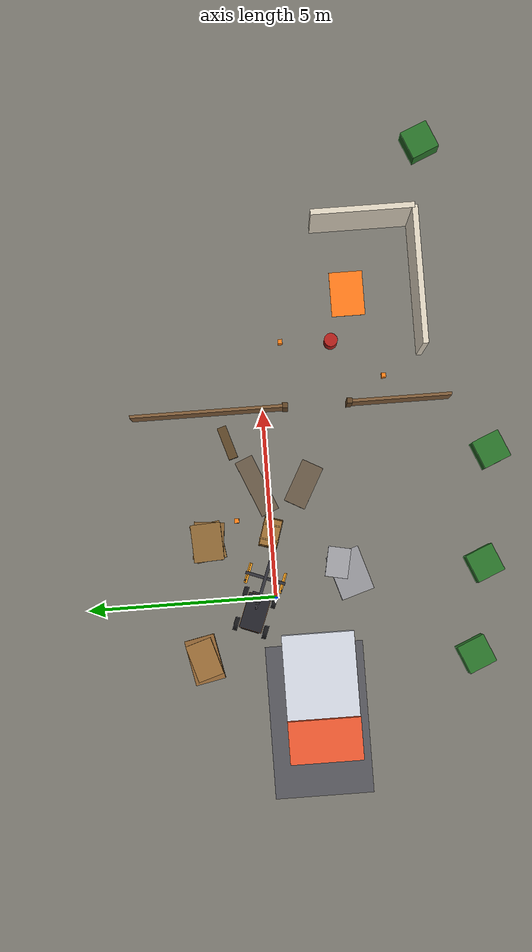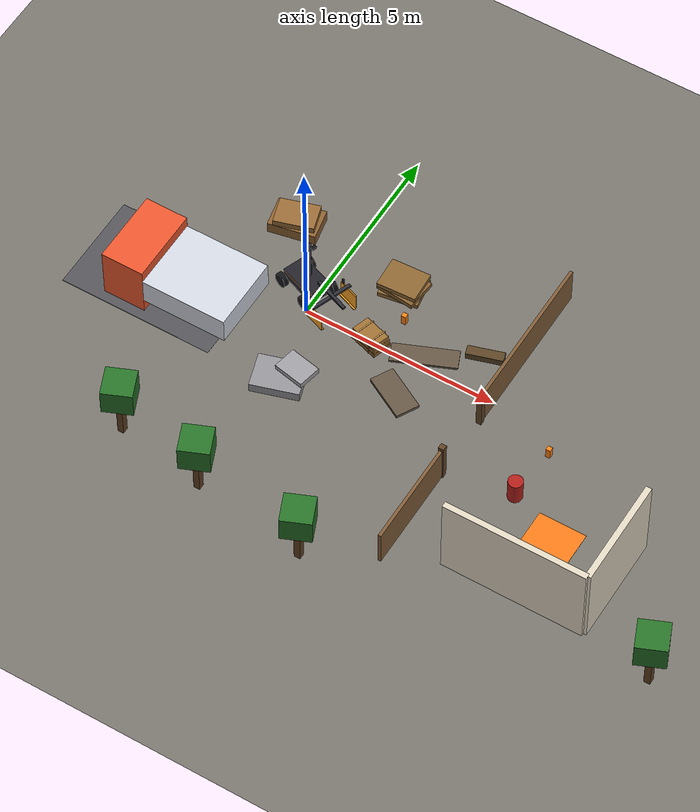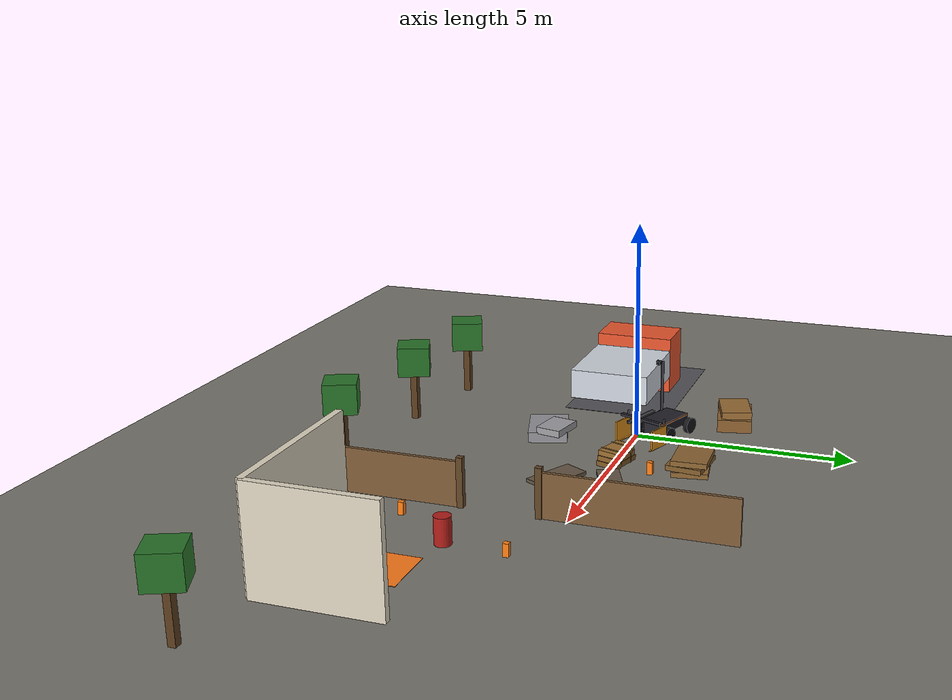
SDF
<?xml version="1.0" ?>
<sdf version="1.10">
  <world name="jobsite">

    <physics name="default" type="dartsim">
      <max_step_size>0.002</max_step_size>
      <real_time_factor>1.0</real_time_factor>
    </physics>

    <plugin filename="gz-sim-physics-system" name="gz::sim::systems::Physics"/>
    <plugin filename="gz-sim-user-commands-system" name="gz::sim::systems::UserCommands"/>
    <plugin filename="gz-sim-scene-broadcaster-system" name="gz::sim::systems::SceneBroadcaster"/>
    <plugin filename="gz-sim-sensors-system" name="gz::sim::systems::Sensors">
      <render_engine>ogre2</render_engine>
    </plugin>

    <scene>
      <ambient>0.7 0.7 0.7 1</ambient>
      <background>0.55 0.75 0.95 1</background>
    </scene>

    <light type="directional" name="sun">
      <cast_shadows>true</cast_shadows>
      <pose>0 0 12 0 0 0</pose>
      <diffuse>0.9 0.87 0.8 1</diffuse>
      <direction>-0.4 0.3 -0.8</direction>
    </light>

    <!-- ground -->
    <model name="ground">
      <static>true</static>
      <link name="link">
        <collision name="c">
          <geometry><plane><normal>0 0 1</normal><size>60 60</size></plane></geometry>
          <surface><friction><ode><mu>0.9</mu><mu2>0.9</mu2></ode></friction></surface>
        </collision>
        <visual name="v">
          <geometry><plane><normal>0 0 1</normal><size>60 60</size></plane></geometry>
          <material><ambient>0.42 0.41 0.38 1</ambient><diffuse>0.47 0.46 0.43 1</diffuse></material>
        </visual>
      </link>
    </model>

    <!-- rough patches: shallow ramps and bumps on the route -->
    <model name="bump1">
      <static>true</static>
      <pose>3.0 0.3 0.02 0 0 0.4</pose>
      <link name="l"><collision name="c"><geometry><box><size>1.6 0.5 0.06</size></box></geometry></collision>
      <visual name="v"><geometry><box><size>1.6 0.5 0.06</size></box></geometry>
      <material><ambient>0.35 0.3 0.24 1</ambient><diffuse>0.4 0.34 0.27 1</diffuse></material></visual></link>
    </model>
    <model name="bump2">
      <static>true</static>
      <pose>2.95 -0.95 0.025 0 0 -0.5</pose>
      <link name="l"><collision name="c"><geometry><box><size>1.2 0.6 0.08</size></box></geometry></collision>
      <visual name="v"><geometry><box><size>1.2 0.6 0.08</size></box></geometry>
      <material><ambient>0.35 0.3 0.24 1</ambient><diffuse>0.4 0.34 0.27 1</diffuse></material></visual></link>
    </model>

    <!-- obstacle on the route -->
    <model name="obstacle_scrap">
      <static>true</static>
      <pose>4.2 1.0 0.09 0 0 0.3</pose>
      <link name="l"><collision name="c"><geometry><box><size>0.9 0.25 0.18</size></box></geometry></collision>
      <visual name="v"><geometry><box><size>0.9 0.25 0.18</size></box></geometry>
      <material><ambient>0.30 0.22 0.12 1</ambient><diffuse>0.36 0.27 0.15 1</diffuse></material></visual></link>
    </model>

    <!-- material pile (where stacks come from) -->
    <model name="pile">
      <static>true</static>
      <pose>-1.5 2.0 0 0 0 0.2</pose>
      <link name="l">
        <collision name="c1"><pose>0 0 0.15 0 0 0</pose><geometry><box><size>1.2 0.8 0.3</size></box></geometry></collision>
        <visual name="v1"><pose>0 0 0.15 0 0 0</pose><geometry><box><size>1.2 0.8 0.3</size></box></geometry>
          <material><ambient>0.45 0.32 0.16 1</ambient><diffuse>0.55 0.38 0.19 1</diffuse></material></visual>
        <visual name="v2"><pose>0 0 0.38 0 0 0.1</pose><geometry><box><size>1.0 0.7 0.16</size></box></geometry>
          <material><ambient>0.5 0.36 0.18 1</ambient><diffuse>0.6 0.42 0.21 1</diffuse></material></visual>
      </link>
    </model>

    <!-- drop zone marker -->
    <model name="drop_zone">
      <static>true</static>
      <pose>8.0 -2.5 0.006 0 0 0</pose>
      <link name="l">
        <visual name="v"><geometry><box><size>1.2 0.9 0.012</size></box></geometry>
          <material><ambient>1.0 0.48 0.10 1</ambient><diffuse>1.0 0.48 0.10 1</diffuse></material></visual>
      </link>
    </model>

    <!-- ===================== T-01 robot ===================== -->
    <model name="t01">
      <pose>-0.36 0.585 0.32 0 0 -0.363</pose>

      <link name="chassis">
        <inertial>
          <pose>-0.12 0 -0.05 0 0 0</pose>
          <mass>140</mass>
          <inertia><ixx>6.0</ixx><iyy>12.5</iyy><izz>15.0</izz><ixy>0</ixy><ixz>0</ixz><iyz>0</iyz></inertia>
        </inertial>
        <collision name="c">
          <geometry><box><size>0.95 0.60 0.24</size></box></geometry>
        </collision>
        <visual name="v">
          <geometry><box><size>0.95 0.60 0.24</size></box></geometry>
          <material><ambient>0.10 0.10 0.12 1</ambient><diffuse>0.13 0.13 0.16 1</diffuse></material>
        </visual>
        <visual name="ballast">
          <pose>-0.42 0 -0.02 0 0 0</pose>
          <geometry><box><size>0.16 0.5 0.20</size></box></geometry>
          <material><ambient>0.08 0.08 0.09 1</ambient><diffuse>0.11 0.11 0.13 1</diffuse></material>
        </visual>
        <sensor name="lidar" type="gpu_lidar">
          <pose>0.48 0 -0.20 0 0 0</pose>
          <topic>scan</topic>
          <update_rate>10</update_rate>
          <lidar>
            <scan><horizontal><samples>480</samples><resolution>1</resolution>
              <min_angle>-3.1416</min_angle><max_angle>3.1416</max_angle></horizontal></scan>
            <range><min>0.15</min><max>14.0</max><resolution>0.01</resolution></range>
          </lidar>
        </sensor>
        <visual name="stripe">
          <pose>0 0 0.09 0 0 0</pose>
          <geometry><box><size>0.96 0.61 0.03</size></box></geometry>
          <material><ambient>1.0 0.48 0.10 1</ambient><diffuse>1.0 0.48 0.10 1</diffuse></material>
        </visual>
      </link>

      <!-- mast + camera -->
      <link name="camera_link">
        <pose>0.30 0 1.50 0 0.25 0</pose>
        <inertial><mass>0.5</mass><inertia><ixx>0.01</ixx><iyy>0.01</iyy><izz>0.01</izz></inertia></inertial>
        <visual name="v"><geometry><box><size>0.08 0.10 0.08</size></box></geometry>
          <material><ambient>0.05 0.05 0.06 1</ambient><diffuse>0.08 0.08 0.1 1</diffuse></material></visual>
        <visual name="pole"><pose>0 0 -0.62 0 -0.25 0</pose><geometry><box><size>0.05 0.05 1.18</size></box></geometry>
          <material><ambient>0.10 0.10 0.12 1</ambient><diffuse>0.13 0.13 0.16 1</diffuse></material></visual>
        <sensor name="front_cam" type="camera">
          <topic>front_cam</topic>
          <update_rate>15</update_rate>
          <camera>
            <horizontal_fov>1.5</horizontal_fov>
            <image><width>640</width><height>360</height></image>
            <clip><near>0.05</near><far>60</far></clip>
          </camera>
        </sensor>
      </link>
      <joint name="camera_joint" type="fixed">
        <parent>chassis</parent><child>camera_link</child>
      </joint>

      <!-- front mast carriage (lift) -->
      <link name="lift_link">
        <pose>0.50 0 -0.05 0 0 0</pose>
        <inertial>
          <mass>8</mass>
          <inertia><ixx>0.2</ixx><iyy>0.25</iyy><izz>0.3</izz></inertia>
        </inertial>
        <collision name="c"><geometry><box><size>0.06 0.44 0.30</size></box></geometry></collision>
        <visual name="v"><geometry><box><size>0.06 0.44 0.30</size></box></geometry>
          <material><ambient>0.12 0.12 0.14 1</ambient><diffuse>0.15 0.15 0.18 1</diffuse></material></visual>
        <visual name="boom"><pose>0.45 0 0.42 0 0 0</pose>
          <geometry><box><size>0.95 0.08 0.06</size></box></geometry>
          <material><ambient>0.14 0.14 0.16 1</ambient><diffuse>0.18 0.18 0.21 1</diffuse></material></visual>
        <visual name="crossbar"><pose>0.45 0 0.36 0 0 0</pose>
          <geometry><box><size>0.08 1.08 0.06</size></box></geometry>
          <material><ambient>0.14 0.14 0.16 1</ambient><diffuse>0.18 0.18 0.21 1</diffuse></material></visual>
      </link>
      <joint name="lift_joint" type="prismatic">
        <parent>chassis</parent><child>lift_link</child>
        <axis>
          <xyz>0 0 1</xyz>
          <limit><lower>-0.05</lower><upper>0.45</upper><effort>8000</effort><velocity>0.4</velocity></limit>
          <dynamics><damping>500</damping></dynamics>
        </axis>
      </joint>

      <!-- wheels (skid-steer approximation of tracks) -->
      <link name="wheel_fl"><pose>0.42 0.40 -0.14 -1.5707 0 0</pose>
        <inertial><mass>6</mass><inertia><ixx>0.06</ixx><iyy>0.06</iyy><izz>0.1</izz></inertia></inertial>
        <collision name="c"><geometry><cylinder><radius>0.18</radius><length>0.12</length></cylinder></geometry>
          <surface><friction><ode><mu>1.1</mu><mu2>0.9</mu2></ode></friction></surface></collision>
        <visual name="v"><geometry><cylinder><radius>0.18</radius><length>0.12</length></cylinder></geometry>
          <material><ambient>0.06 0.06 0.07 1</ambient><diffuse>0.09 0.09 0.1 1</diffuse></material></visual>
      </link>
      <link name="wheel_fr"><pose>0.42 -0.40 -0.14 -1.5707 0 0</pose>
        <inertial><mass>6</mass><inertia><ixx>0.06</ixx><iyy>0.06</iyy><izz>0.1</izz></inertia></inertial>
        <collision name="c"><geometry><cylinder><radius>0.18</radius><length>0.12</length></cylinder></geometry>
          <surface><friction><ode><mu>1.1</mu><mu2>0.9</mu2></ode></friction></surface></collision>
        <visual name="v"><geometry><cylinder><radius>0.18</radius><length>0.12</length></cylinder></geometry>
          <material><ambient>0.06 0.06 0.07 1</ambient><diffuse>0.09 0.09 0.1 1</diffuse></material></visual>
      </link>
      <link name="wheel_rl"><pose>-0.42 0.40 -0.14 -1.5707 0 0</pose>
        <inertial><mass>6</mass><inertia><ixx>0.06</ixx><iyy>0.06</iyy><izz>0.1</izz></inertia></inertial>
        <collision name="c"><geometry><cylinder><radius>0.18</radius><length>0.12</length></cylinder></geometry>
          <surface><friction><ode><mu>1.1</mu><mu2>0.9</mu2></ode></friction></surface></collision>
        <visual name="v"><geometry><cylinder><radius>0.18</radius><length>0.12</length></cylinder></geometry>
          <material><ambient>0.06 0.06 0.07 1</ambient><diffuse>0.09 0.09 0.1 1</diffuse></material></visual>
      </link>
      <link name="wheel_rr"><pose>-0.42 -0.40 -0.14 -1.5707 0 0</pose>
        <inertial><mass>6</mass><inertia><ixx>0.06</ixx><iyy>0.06</iyy><izz>0.1</izz></inertia></inertial>
        <collision name="c"><geometry><cylinder><radius>0.18</radius><length>0.12</length></cylinder></geometry>
          <surface><friction><ode><mu>1.1</mu><mu2>0.9</mu2></ode></friction></surface></collision>
        <visual name="v"><geometry><cylinder><radius>0.18</radius><length>0.12</length></cylinder></geometry>
          <material><ambient>0.06 0.06 0.07 1</ambient><diffuse>0.09 0.09 0.1 1</diffuse></material></visual>
      </link>

      <joint name="wheel_fl_joint" type="revolute">
        <parent>chassis</parent><child>wheel_fl</child>
        <axis><xyz>0 0 1</xyz><limit><effort>1500</effort></limit></axis>
      </joint>
      <joint name="wheel_fr_joint" type="revolute">
        <parent>chassis</parent><child>wheel_fr</child>
        <axis><xyz>0 0 1</xyz><limit><effort>1500</effort></limit></axis>
      </joint>
      <joint name="wheel_rl_joint" type="revolute">
        <parent>chassis</parent><child>wheel_rl</child>
        <axis><xyz>0 0 1</xyz><limit><effort>1500</effort></limit></axis>
      </joint>
      <joint name="wheel_rr_joint" type="revolute">
        <parent>chassis</parent><child>wheel_rr</child>
        <axis><xyz>0 0 1</xyz><limit><effort>1500</effort></limit></axis>
      </joint>

      <!-- drive: skid steer via diff drive on both wheel pairs -->
      <plugin filename="gz-sim-diff-drive-system" name="gz::sim::systems::DiffDrive">
        <left_joint>wheel_fl_joint</left_joint>
        <left_joint>wheel_rl_joint</left_joint>
        <right_joint>wheel_fr_joint</right_joint>
        <right_joint>wheel_rr_joint</right_joint>
        <wheel_separation>0.80</wheel_separation>
        <wheel_radius>0.18</wheel_radius>
        <topic>/cmd_vel</topic>
        <odom_topic>/odom</odom_topic>
        <max_linear_acceleration>0.4</max_linear_acceleration>
      </plugin>

      <!-- lift control -->
      <plugin filename="gz-sim-joint-position-controller-system" name="gz::sim::systems::JointPositionController">
        <joint_name>lift_joint</joint_name>
        <topic>/lift_cmd</topic>
        <p_gain>12000</p_gain>
        <d_gain>900</d_gain>
        <i_gain>10</i_gain>
        <initial_position>0.10</initial_position>
      </plugin>

      <!-- clamp paddles: the robot HUGS the load (bear-hug cradle, not a forklift) -->
      <link name="paddle_l">
        <pose>0.95 0.50 -0.03 0 0 0</pose>
        <inertial><mass>3</mass><inertia><ixx>0.07</ixx><iyy>0.08</iyy><izz>0.03</izz></inertia></inertial>
        <collision name="c"><geometry><box><size>0.55 0.03 0.46</size></box></geometry>
          <surface><friction><ode><mu>1.2</mu><mu2>1.2</mu2></ode></friction></surface></collision>
        <visual name="v"><geometry><box><size>0.55 0.03 0.46</size></box></geometry>
          <material><ambient>0.85 0.55 0.10 1</ambient><diffuse>0.95 0.62 0.12 1</diffuse></material></visual>
        <visual name="hanger"><pose>-0.20 0 0.31 0 0 0</pose><geometry><box><size>0.05 0.03 0.16</size></box></geometry>
          <material><ambient>0.14 0.14 0.16 1</ambient><diffuse>0.18 0.18 0.21 1</diffuse></material></visual>
        <collision name="toe"><pose>0 -0.037 -0.241 0 0 0</pose><geometry><box><size>0.55 0.045 0.022</size></box></geometry>
          <surface><friction><ode><mu>1.0</mu><mu2>1.0</mu2></ode></friction></surface></collision>
        <visual name="toe_v"><pose>0 -0.037 -0.241 0 0 0</pose><geometry><box><size>0.55 0.045 0.022</size></box></geometry>
          <material><ambient>0.85 0.55 0.10 1</ambient><diffuse>0.95 0.62 0.12 1</diffuse></material></visual>
      </link>
      <joint name="clamp_l_joint" type="prismatic">
        <parent>lift_link</parent><child>paddle_l</child>
        <axis><xyz>0 -1 0</xyz>
          <limit><lower>0</lower><upper>0.45</upper><effort>2600</effort><velocity>0.25</velocity></limit>
          <dynamics><damping>400</damping></dynamics>
        </axis>
      </joint>
      <link name="paddle_r">
        <pose>0.95 -0.50 -0.03 0 0 0</pose>
        <inertial><mass>3</mass><inertia><ixx>0.07</ixx><iyy>0.08</iyy><izz>0.03</izz></inertia></inertial>
        <collision name="c"><geometry><box><size>0.55 0.03 0.46</size></box></geometry>
          <surface><friction><ode><mu>1.2</mu><mu2>1.2</mu2></ode></friction></surface></collision>
        <visual name="v"><geometry><box><size>0.55 0.03 0.46</size></box></geometry>
          <material><ambient>0.85 0.55 0.10 1</ambient><diffuse>0.95 0.62 0.12 1</diffuse></material></visual>
        <visual name="hanger"><pose>-0.20 0 0.31 0 0 0</pose><geometry><box><size>0.05 0.03 0.16</size></box></geometry>
          <material><ambient>0.14 0.14 0.16 1</ambient><diffuse>0.18 0.18 0.21 1</diffuse></material></visual>
        <collision name="toe"><pose>0 0.037 -0.241 0 0 0</pose><geometry><box><size>0.55 0.045 0.022</size></box></geometry>
          <surface><friction><ode><mu>1.0</mu><mu2>1.0</mu2></ode></friction></surface></collision>
        <visual name="toe_v"><pose>0 0.037 -0.241 0 0 0</pose><geometry><box><size>0.55 0.045 0.022</size></box></geometry>
          <material><ambient>0.85 0.55 0.10 1</ambient><diffuse>0.95 0.62 0.12 1</diffuse></material></visual>
      </link>
      <joint name="clamp_r_joint" type="prismatic">
        <parent>lift_link</parent><child>paddle_r</child>
        <axis><xyz>0 1 0</xyz>
          <limit><lower>0</lower><upper>0.45</upper><effort>2600</effort><velocity>0.25</velocity></limit>
          <dynamics><damping>400</damping></dynamics>
        </axis>
      </joint>

      <!-- clamp controllers (force-limited squeeze via joint effort cap) -->
      <plugin filename="gz-sim-joint-position-controller-system" name="gz::sim::systems::JointPositionController">
        <joint_name>clamp_l_joint</joint_name>
        <topic>/clamp_l_cmd</topic>
        <p_gain>14000</p_gain>
        <d_gain>500</d_gain>
        <initial_position>0.0</initial_position>
      </plugin>
      <plugin filename="gz-sim-joint-position-controller-system" name="gz::sim::systems::JointPositionController">
        <joint_name>clamp_r_joint</joint_name>
        <topic>/clamp_r_cmd</topic>
        <p_gain>14000</p_gain>
        <d_gain>500</d_gain>
        <initial_position>0.0</initial_position>
      </plugin>

      <plugin filename="gz-sim-joint-state-publisher-system" name="gz::sim::systems::JointStatePublisher">
        <joint_name>lift_joint</joint_name>
        <joint_name>clamp_l_joint</joint_name>
        <joint_name>clamp_r_joint</joint_name>
      </plugin>

      <!-- true model pose (OdometryPublisher integrates velocity and drifts; this does not) -->
      <plugin filename="gz-sim-pose-publisher-system" name="gz::sim::systems::PosePublisher">
        <publish_model_pose>true</publish_model_pose>
        <publish_link_pose>false</publish_link_pose>
        <publish_collision_pose>false</publish_collision_pose>
        <publish_visual_pose>false</publish_visual_pose>
        <publish_nested_model_pose>false</publish_nested_model_pose>
        <static_publisher>false</static_publisher>
        <use_pose_vector_msg>true</use_pose_vector_msg>
        <update_frequency>30</update_frequency>
      </plugin>

    </model>

    <!-- cedar stack payload flat on the ground (no pallet, no dunnage): the robot
         clamps it from the sides, which is the whole point of the bear-hug design -->
    <model name="cedar_stack">
      <pose>1.72 0.02 0.185 0 0 -0.30</pose>
      <plugin filename="gz-sim-pose-publisher-system" name="gz::sim::systems::PosePublisher">
        <publish_model_pose>true</publish_model_pose>
        <publish_link_pose>false</publish_link_pose>
        <publish_collision_pose>false</publish_collision_pose>
        <publish_visual_pose>false</publish_visual_pose>
        <publish_nested_model_pose>false</publish_nested_model_pose>
        <static_publisher>false</static_publisher>
        <use_pose_vector_msg>true</use_pose_vector_msg>
        <update_frequency>10</update_frequency>
      </plugin>
      <link name="stack_link">
        <inertial>
          <mass>60</mass>
          <inertia><ixx>1.2</ixx><iyy>2.6</iyy><izz>3.2</izz></inertia>
        </inertial>
        <collision name="c"><geometry><box><size>0.80 0.50 0.36</size></box></geometry>
          <surface><friction><ode><mu>0.95</mu><mu2>0.95</mu2></ode></friction></surface></collision>
        <visual name="v1"><pose>0 0 -0.12 0 0 0</pose><geometry><box><size>0.80 0.50 0.12</size></box></geometry>
          <material><ambient>0.42 0.29 0.13 1</ambient><diffuse>0.52 0.36 0.16 1</diffuse></material></visual>
        <visual name="v2"><pose>0 0 0.0 0 0 0</pose><geometry><box><size>0.76 0.48 0.12</size></box></geometry>
          <material><ambient>0.48 0.33 0.15 1</ambient><diffuse>0.58 0.40 0.18 1</diffuse></material></visual>
        <visual name="v3"><pose>0 0 0.12 0 0 0</pose><geometry><box><size>0.72 0.46 0.12</size></box></geometry>
          <material><ambient>0.52 0.36 0.17 1</ambient><diffuse>0.62 0.44 0.20 1</diffuse></material></visual>
        <visual name="strap1"><pose>0.2 0 0 0 0 0</pose><geometry><box><size>0.03 0.52 0.38</size></box></geometry>
          <material><ambient>0.75 0.55 0.3 1</ambient><diffuse>0.8 0.6 0.33 1</diffuse></material></visual>
        <visual name="strap2"><pose>-0.2 0 0 0 0 0</pose><geometry><box><size>0.03 0.52 0.38</size></box></geometry>
          <material><ambient>0.75 0.55 0.3 1</ambient><diffuse>0.8 0.6 0.33 1</diffuse></material></visual>
      </link>
    </model>

    <!-- ============ scenery pack (demo v2) ============ -->
    <model name="driveway">
      <static>true</static>
      <pose>-3.3 -0.9 0.004 0 0 0</pose>
      <link name="l"><collision name="c"><geometry><box><size>4.0 2.6 0.008</size></box></geometry></collision>
      <visual name="v"><geometry><box><size>4.0 2.6 0.008</size></box></geometry>
      <material><ambient>0.28 0.28 0.30 1</ambient><diffuse>0.33 0.33 0.35 1</diffuse></material></visual></link>
    </model>
    <model name="truck_bed">
      <static>true</static>
      <pose>-2.1 -1.0 0.75 0 0 0</pose>
      <link name="l"><collision name="c"><geometry><box><size>2.2 1.9 0.7</size></box></geometry></collision>
      <visual name="v"><geometry><box><size>2.2 1.9 0.7</size></box></geometry>
      <material><ambient>0.72 0.74 0.78 1</ambient><diffuse>0.82 0.84 0.88 1</diffuse></material></visual></link>
    </model>
    <model name="truck_cab">
      <static>true</static>
      <pose>-3.75 -1.0 0.7 0 0 0</pose>
      <link name="l"><collision name="c"><geometry><box><size>1.1 1.9 1.4</size></box></geometry></collision>
      <visual name="v"><geometry><box><size>1.1 1.9 1.4</size></box></geometry>
      <material><ambient>0.82 0.30 0.16 1</ambient><diffuse>0.92 0.34 0.18 1</diffuse></material></visual></link>
    </model>
    <model name="fence_a">
      <static>true</static>
      <pose>5.0 1.45 0.5 0 0 0</pose>
      <link name="l"><collision name="c"><geometry><box><size>0.08 4.1 1.0</size></box></geometry></collision>
      <visual name="v"><geometry><box><size>0.08 4.1 1.0</size></box></geometry>
      <material><ambient>0.42 0.30 0.18 1</ambient><diffuse>0.5 0.36 0.22 1</diffuse></material></visual></link>
    </model>
    <model name="fence_b">
      <static>true</static>
      <pose>5.0 -3.65 0.5 0 0 0</pose>
      <link name="l"><collision name="c"><geometry><box><size>0.08 2.7 1.0</size></box></geometry></collision>
      <visual name="v"><geometry><box><size>0.08 2.7 1.0</size></box></geometry>
      <material><ambient>0.42 0.30 0.18 1</ambient><diffuse>0.5 0.36 0.22 1</diffuse></material></visual></link>
    </model>
    <model name="gate_post_a">
      <static>true</static>
      <pose>5.0 -0.60 0.55 0 0 0</pose>
      <link name="l"><collision name="c"><geometry><box><size>0.14 0.14 1.1</size></box></geometry></collision>
      <visual name="v"><geometry><box><size>0.14 0.14 1.1</size></box></geometry>
      <material><ambient>0.32 0.22 0.12 1</ambient><diffuse>0.38 0.27 0.15 1</diffuse></material></visual></link>
    </model>
    <model name="gate_post_b">
      <static>true</static>
      <pose>5.0 -2.30 0.55 0 0 0</pose>
      <link name="l"><collision name="c"><geometry><box><size>0.14 0.14 1.1</size></box></geometry></collision>
      <visual name="v"><geometry><box><size>0.14 0.14 1.1</size></box></geometry>
      <material><ambient>0.32 0.22 0.12 1</ambient><diffuse>0.38 0.27 0.15 1</diffuse></material></visual></link>
    </model>
    <model name="house_wall_a">
      <static>true</static>
      <pose>8.0 -4.3 1.15 0 0 0</pose>
      <link name="l"><collision name="c"><geometry><box><size>3.6 0.15 2.3</size></box></geometry></collision>
      <visual name="v"><geometry><box><size>3.6 0.15 2.3</size></box></geometry>
      <material><ambient>0.82 0.78 0.70 1</ambient><diffuse>0.88 0.84 0.76 1</diffuse></material></visual></link>
    </model>
    <model name="house_wall_b">
      <static>true</static>
      <pose>9.8 -2.95 1.15 0 0 0</pose>
      <link name="l"><collision name="c"><geometry><box><size>0.15 2.7 2.3</size></box></geometry></collision>
      <visual name="v"><geometry><box><size>0.15 2.7 2.3</size></box></geometry>
      <material><ambient>0.82 0.78 0.70 1</ambient><diffuse>0.88 0.84 0.76 1</diffuse></material></visual></link>
    </model>
    <model name="pallet1">
      <static>true</static>
      <pose>1.6 1.7 0.06 0 0 0.15</pose>
      <link name="l"><collision name="c"><geometry><box><size>1.0 0.8 0.12</size></box></geometry></collision>
      <visual name="v"><geometry><box><size>1.0 0.8 0.12</size></box></geometry>
      <material><ambient>0.45 0.33 0.17 1</ambient><diffuse>0.55 0.40 0.20 1</diffuse></material></visual></link>
    </model>
    <model name="pallet2">
      <static>true</static>
      <pose>1.62 1.68 0.18 0 0 -0.1</pose>
      <link name="l"><collision name="c"><geometry><box><size>1.0 0.8 0.12</size></box></geometry></collision>
      <visual name="v"><geometry><box><size>1.0 0.8 0.12</size></box></geometry>
      <material><ambient>0.42 0.30 0.15 1</ambient><diffuse>0.52 0.37 0.18 1</diffuse></material></visual></link>
    </model>
    <model name="pallet3">
      <static>true</static>
      <pose>1.58 1.72 0.30 0 0 0.05</pose>
      <link name="l"><collision name="c"><geometry><box><size>1.0 0.8 0.12</size></box></geometry></collision>
      <visual name="v"><geometry><box><size>1.0 0.8 0.12</size></box></geometry>
      <material><ambient>0.45 0.33 0.17 1</ambient><diffuse>0.55 0.40 0.20 1</diffuse></material></visual></link>
    </model>
    <model name="gravel1">
      <static>true</static>
      <pose>0.5 -2.0 0.125 0 0 0.3</pose>
      <link name="l"><collision name="c"><geometry><box><size>1.2 0.9 0.25</size></box></geometry></collision>
      <visual name="v"><geometry><box><size>1.2 0.9 0.25</size></box></geometry>
      <material><ambient>0.5 0.5 0.52 1</ambient><diffuse>0.58 0.58 0.60 1</diffuse></material></visual></link>
    </model>
    <model name="gravel2">
      <static>true</static>
      <pose>0.8 -1.7 0.30 0 0 -0.2</pose>
      <link name="l"><collision name="c"><geometry><box><size>0.8 0.6 0.16</size></box></geometry></collision>
      <visual name="v"><geometry><box><size>0.8 0.6 0.16</size></box></geometry>
      <material><ambient>0.55 0.55 0.57 1</ambient><diffuse>0.62 0.62 0.64 1</diffuse></material></visual></link>
    </model>
    <model name="cone0">
      <static>true</static>
      <pose>2.1 0.9 0.14 0 0 0</pose>
      <link name="l"><collision name="c"><geometry><box><size>0.12 0.12 0.28</size></box></geometry></collision>
      <visual name="v"><geometry><box><size>0.12 0.12 0.28</size></box></geometry>
      <material><ambient>1.0 0.45 0.05 1</ambient><diffuse>1.0 0.5 0.08 1</diffuse></material></visual></link>
    </model>
    <model name="cone1">
      <static>true</static>
      <pose>6.8 -0.6 0.14 0 0 0</pose>
      <link name="l"><collision name="c"><geometry><box><size>0.12 0.12 0.28</size></box></geometry></collision>
      <visual name="v"><geometry><box><size>0.12 0.12 0.28</size></box></geometry>
      <material><ambient>1.0 0.45 0.05 1</ambient><diffuse>1.0 0.5 0.08 1</diffuse></material></visual></link>
    </model>
    <model name="cone2">
      <static>true</static>
      <pose>5.7 -3.3 0.14 0 0 0</pose>
      <link name="l"><collision name="c"><geometry><box><size>0.12 0.12 0.28</size></box></geometry></collision>
      <visual name="v"><geometry><box><size>0.12 0.12 0.28</size></box></geometry>
      <material><ambient>1.0 0.45 0.05 1</ambient><diffuse>1.0 0.5 0.08 1</diffuse></material></visual></link>
    </model>
    <model name="trunk0">
      <static>true</static>
      <pose>0.5 -5.4 0.6 0 0 0</pose>
      <link name="l"><collision name="c"><geometry><box><size>0.16 0.16 1.2</size></box></geometry></collision>
      <visual name="v"><geometry><box><size>0.16 0.16 1.2</size></box></geometry>
      <material><ambient>0.30 0.20 0.10 1</ambient><diffuse>0.36 0.24 0.12 1</diffuse></material></visual></link>
    </model>
    <model name="canopy0">
      <static>true</static>
      <pose>0.5 -5.4 1.5 0 0 0.4</pose>
      <link name="l"><collision name="c"><geometry><box><size>0.75 0.75 0.7</size></box></geometry></collision>
      <visual name="v"><geometry><box><size>0.75 0.75 0.7</size></box></geometry>
      <material><ambient>0.13 0.35 0.13 1</ambient><diffuse>0.16 0.45 0.16 1</diffuse></material></visual></link>
    </model>
    <model name="trunk1">
      <static>true</static>
      <pose>3.4 -5.8 0.6 0 0 0</pose>
      <link name="l"><collision name="c"><geometry><box><size>0.16 0.16 1.2</size></box></geometry></collision>
      <visual name="v"><geometry><box><size>0.16 0.16 1.2</size></box></geometry>
      <material><ambient>0.30 0.20 0.10 1</ambient><diffuse>0.36 0.24 0.12 1</diffuse></material></visual></link>
    </model>
    <model name="canopy1">
      <static>true</static>
      <pose>3.4 -5.8 1.5 0 0 0.4</pose>
      <link name="l"><collision name="c"><geometry><box><size>0.75 0.75 0.7</size></box></geometry></collision>
      <visual name="v"><geometry><box><size>0.75 0.75 0.7</size></box></geometry>
      <material><ambient>0.13 0.35 0.13 1</ambient><diffuse>0.16 0.45 0.16 1</diffuse></material></visual></link>
    </model>
    <model name="trunk2">
      <static>true</static>
      <pose>-1.8 -5.0 0.6 0 0 0</pose>
      <link name="l"><collision name="c"><geometry><box><size>0.16 0.16 1.2</size></box></geometry></collision>
      <visual name="v"><geometry><box><size>0.16 0.16 1.2</size></box></geometry>
      <material><ambient>0.30 0.20 0.10 1</ambient><diffuse>0.36 0.24 0.12 1</diffuse></material></visual></link>
    </model>
    <model name="canopy2">
      <static>true</static>
      <pose>-1.8 -5.0 1.5 0 0 0.4</pose>
      <link name="l"><collision name="c"><geometry><box><size>0.75 0.75 0.7</size></box></geometry></collision>
      <visual name="v"><geometry><box><size>0.75 0.75 0.7</size></box></geometry>
      <material><ambient>0.13 0.35 0.13 1</ambient><diffuse>0.16 0.45 0.16 1</diffuse></material></visual></link>
    </model>
    <model name="trunk3">
      <static>true</static>
      <pose>11.6 -4.6 0.6 0 0 0</pose>
      <link name="l"><collision name="c"><geometry><box><size>0.16 0.16 1.2</size></box></geometry></collision>
      <visual name="v"><geometry><box><size>0.16 0.16 1.2</size></box></geometry>
      <material><ambient>0.30 0.20 0.10 1</ambient><diffuse>0.36 0.24 0.12 1</diffuse></material></visual></link>
    </model>
    <model name="canopy3">
      <static>true</static>
      <pose>11.6 -4.6 1.5 0 0 0.4</pose>
      <link name="l"><collision name="c"><geometry><box><size>0.75 0.75 0.7</size></box></geometry></collision>
      <visual name="v"><geometry><box><size>0.75 0.75 0.7</size></box></geometry>
      <material><ambient>0.13 0.35 0.13 1</ambient><diffuse>0.16 0.45 0.16 1</diffuse></material></visual></link>
    </model>

    <model name="barrel">
      <static>true</static>
      <pose>6.7 -1.95 0.30 0 0 0</pose>
      <link name="l">
        <collision name="c"><geometry><cylinder><radius>0.18</radius><length>0.60</length></cylinder></geometry></collision>
        <visual name="v"><geometry><cylinder><radius>0.18</radius><length>0.60</length></cylinder></geometry>
          <material><ambient>0.55 0.10 0.08 1</ambient><diffuse>0.70 0.12 0.10 1</diffuse></material></visual>
      </link>
    </model>

    <!-- fixed overview camera for demo recording -->
    <model name="overview_cam_mount">
      <static>true</static>
      <pose>2.8 6.8 6.2 0 0.66 -1.5708</pose>
      <link name="cam_link">
        <sensor name="overview_cam" type="camera">
          <topic>overview_cam</topic>
          <update_rate>20</update_rate>
          <camera>
            <horizontal_fov>1.32</horizontal_fov>
            <image><width>1280</width><height>720</height></image>
            <clip><near>0.1</near><far>120</far></clip>
          </camera>
        </sensor>
      </link>
    </model>
  </world>
</sdf>
